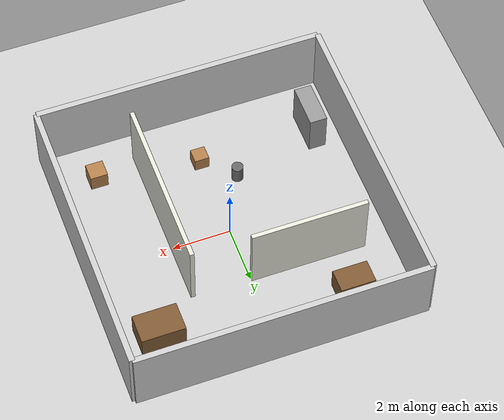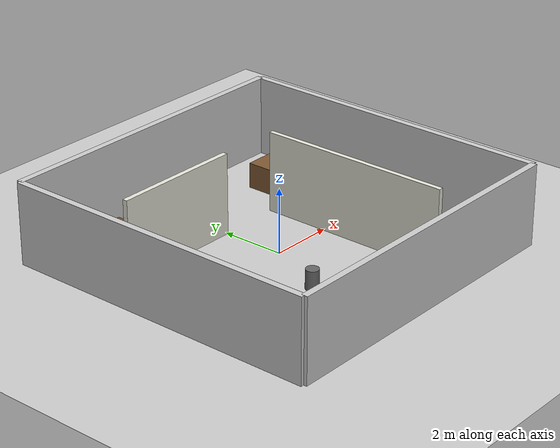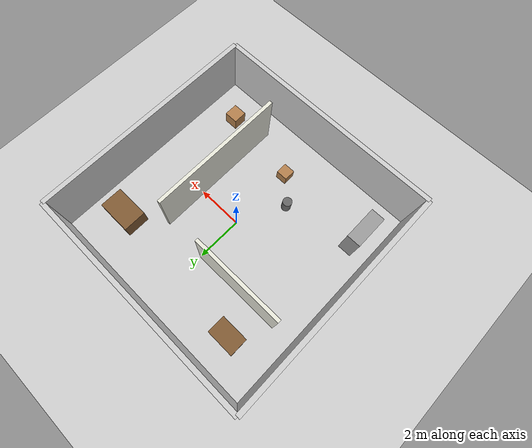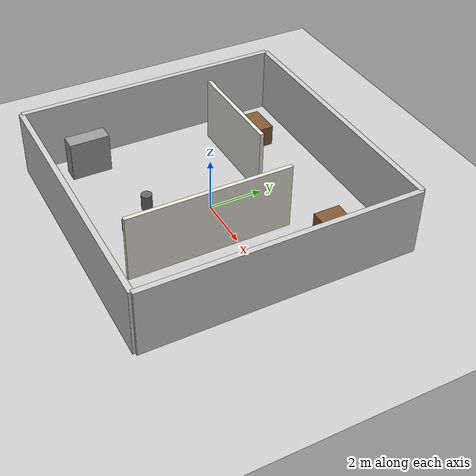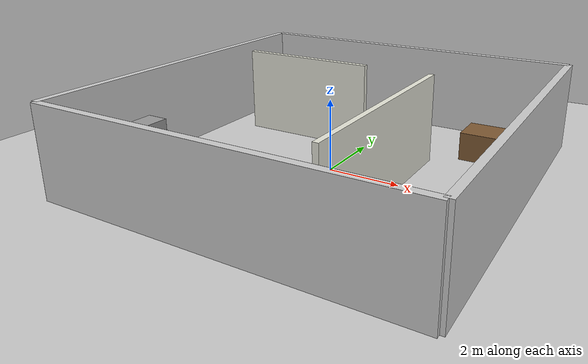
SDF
<?xml version="1.0" ?>
<sdf version="1.6">
  <world name="indoor_office">

    <!-- Physics settings -->
    <physics type="ode">
      <real_time_update_rate>1000.0</real_time_update_rate>
      <max_step_size>0.001</max_step_size>
      <real_time_factor>1</real_time_factor>
    </physics>

    <!-- Lighting -->
    <include>
      <uri>model://sun</uri>
    </include>

    <!-- Ground plane -->
    <include>
      <uri>model://ground_plane</uri>
    </include>

    <!-- Room walls -->
    <!-- Outer walls -->
    <model name="wall_north">
      <static>true</static>
      <pose>0 5 1.25 0 0 0</pose>
      <link name="link">
        <collision name="collision">
          <geometry>
            <box><size>10 0.2 2.5</size></box>
          </geometry>
        </collision>
        <visual name="visual">
          <geometry>
            <box><size>10 0.2 2.5</size></box>
          </geometry>
          <material>
            <ambient>0.8 0.8 0.8 1</ambient>
            <diffuse>0.8 0.8 0.8 1</diffuse>
          </material>
        </visual>
      </link>
    </model>

    <model name="wall_south">
      <static>true</static>
      <pose>0 -5 1.25 0 0 0</pose>
      <link name="link">
        <collision name="collision">
          <geometry>
            <box><size>10 0.2 2.5</size></box>
          </geometry>
        </collision>
        <visual name="visual">
          <geometry>
            <box><size>10 0.2 2.5</size></box>
          </geometry>
          <material>
            <ambient>0.8 0.8 0.8 1</ambient>
            <diffuse>0.8 0.8 0.8 1</diffuse>
          </material>
        </visual>
      </link>
    </model>

    <model name="wall_east">
      <static>true</static>
      <pose>5 0 1.25 0 0 0</pose>
      <link name="link">
        <collision name="collision">
          <geometry>
            <box><size>0.2 10 2.5</size></box>
          </geometry>
        </collision>
        <visual name="visual">
          <geometry>
            <box><size>0.2 10 2.5</size></box>
          </geometry>
          <material>
            <ambient>0.8 0.8 0.8 1</ambient>
            <diffuse>0.8 0.8 0.8 1</diffuse>
          </material>
        </visual>
      </link>
    </model>

    <model name="wall_west">
      <static>true</static>
      <pose>-5 0 1.25 0 0 0</pose>
      <link name="link">
        <collision name="collision">
          <geometry>
            <box><size>0.2 10 2.5</size></box>
          </geometry>
        </collision>
        <visual name="visual">
          <geometry>
            <box><size>0.2 10 2.5</size></box>
          </geometry>
          <material>
            <ambient>0.8 0.8 0.8 1</ambient>
            <diffuse>0.8 0.8 0.8 1</diffuse>
          </material>
        </visual>
      </link>
    </model>

    <!-- Interior walls (creating rooms/corridors) -->
    <model name="wall_interior_1">
      <static>true</static>
      <pose>-2 2 1.25 0 0 0</pose>
      <link name="link">
        <collision name="collision">
          <geometry>
            <box><size>4 0.15 2.5</size></box>
          </geometry>
        </collision>
        <visual name="visual">
          <geometry>
            <box><size>4 0.15 2.5</size></box>
          </geometry>
          <material>
            <ambient>0.9 0.9 0.85 1</ambient>
            <diffuse>0.9 0.9 0.85 1</diffuse>
          </material>
        </visual>
      </link>
    </model>

    <model name="wall_interior_2">
      <static>true</static>
      <pose>2 -1 1.25 0 0 0</pose>
      <link name="link">
        <collision name="collision">
          <geometry>
            <box><size>0.15 6 2.5</size></box>
          </geometry>
        </collision>
        <visual name="visual">
          <geometry>
            <box><size>0.15 6 2.5</size></box>
          </geometry>
          <material>
            <ambient>0.9 0.9 0.85 1</ambient>
            <diffuse>0.9 0.9 0.85 1</diffuse>
          </material>
        </visual>
      </link>
    </model>

    <!-- Furniture: Tables -->
    <model name="table_1">
      <static>true</static>
      <pose>-3 3.5 0.4 0 0 0</pose>
      <link name="link">
        <collision name="collision">
          <geometry>
            <box><size>1.2 0.8 0.8</size></box>
          </geometry>
        </collision>
        <visual name="visual">
          <geometry>
            <box><size>1.2 0.8 0.8</size></box>
          </geometry>
          <material>
            <ambient>0.5 0.35 0.2 1</ambient>
            <diffuse>0.5 0.35 0.2 1</diffuse>
          </material>
        </visual>
      </link>
    </model>

    <model name="table_2">
      <static>true</static>
      <pose>3.5 3 0.4 0 0 0</pose>
      <link name="link">
        <collision name="collision">
          <geometry>
            <box><size>1.5 1.0 0.8</size></box>
          </geometry>
        </collision>
        <visual name="visual">
          <geometry>
            <box><size>1.5 1.0 0.8</size></box>
          </geometry>
          <material>
            <ambient>0.5 0.35 0.2 1</ambient>
            <diffuse>0.5 0.35 0.2 1</diffuse>
          </material>
        </visual>
      </link>
    </model>

    <!-- Furniture: Cabinet/Shelf -->
    <model name="cabinet_1">
      <static>true</static>
      <pose>-4 -3 0.75 0 0 0</pose>
      <link name="link">
        <collision name="collision">
          <geometry>
            <box><size>0.6 1.5 1.5</size></box>
          </geometry>
        </collision>
        <visual name="visual">
          <geometry>
            <box><size>0.6 1.5 1.5</size></box>
          </geometry>
          <material>
            <ambient>0.6 0.6 0.6 1</ambient>
            <diffuse>0.6 0.6 0.6 1</diffuse>
          </material>
        </visual>
      </link>
    </model>

    <!-- Obstacles: Boxes -->
    <model name="box_1">
      <static>true</static>
      <pose>0 -3 0.25 0 0 0</pose>
      <link name="link">
        <collision name="collision">
          <geometry>
            <box><size>0.5 0.5 0.5</size></box>
          </geometry>
        </collision>
        <visual name="visual">
          <geometry>
            <box><size>0.5 0.5 0.5</size></box>
          </geometry>
          <material>
            <ambient>0.7 0.5 0.3 1</ambient>
            <diffuse>0.7 0.5 0.3 1</diffuse>
          </material>
        </visual>
      </link>
    </model>

    <model name="box_2">
      <static>true</static>
      <pose>3.5 -3.5 0.3 0 0 0</pose>
      <link name="link">
        <collision name="collision">
          <geometry>
            <box><size>0.6 0.6 0.6</size></box>
          </geometry>
        </collision>
        <visual name="visual">
          <geometry>
            <box><size>0.6 0.6 0.6</size></box>
          </geometry>
          <material>
            <ambient>0.7 0.5 0.3 1</ambient>
            <diffuse>0.7 0.5 0.3 1</diffuse>
          </material>
        </visual>
      </link>
    </model>

    <!-- Cylinder obstacle (like a trash can) -->
    <model name="cylinder_1">
      <static>true</static>
      <pose>-1 -2 0.3 0 0 0</pose>
      <link name="link">
        <collision name="collision">
          <geometry>
            <cylinder>
              <radius>0.2</radius>
              <length>0.6</length>
            </cylinder>
          </geometry>
        </collision>
        <visual name="visual">
          <geometry>
            <cylinder>
              <radius>0.2</radius>
              <length>0.6</length>
            </cylinder>
          </geometry>
          <material>
            <ambient>0.4 0.4 0.4 1</ambient>
            <diffuse>0.4 0.4 0.4 1</diffuse>
          </material>
        </visual>
      </link>
    </model>

  </world>
</sdf>
